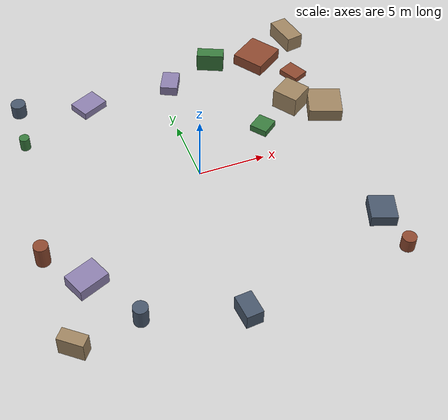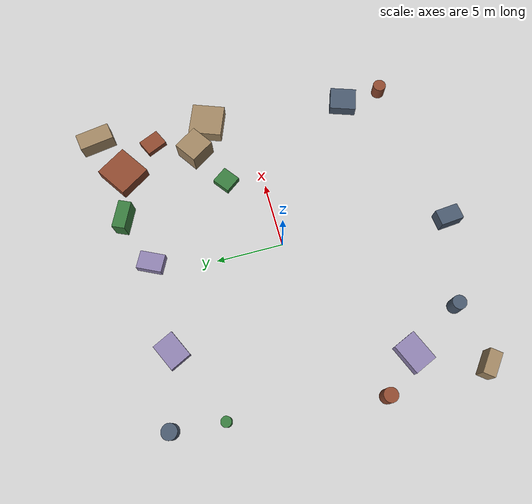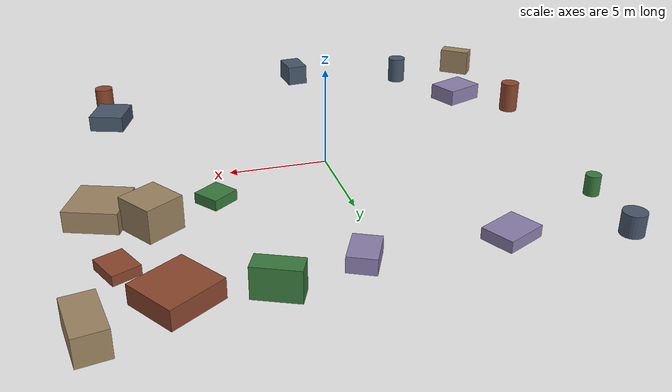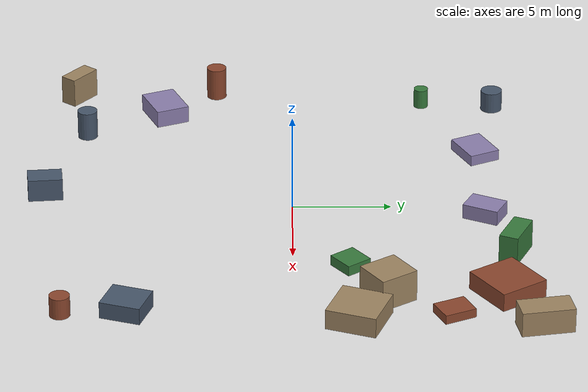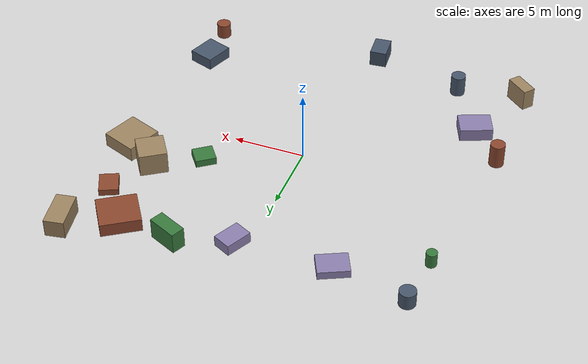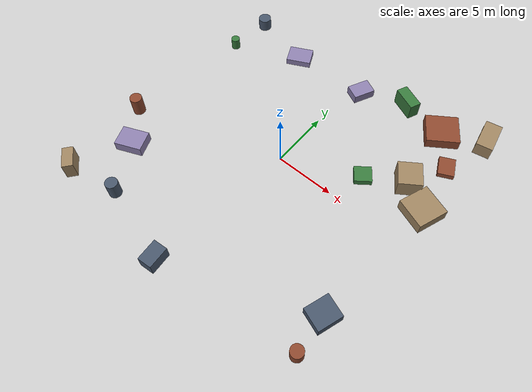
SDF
<sdf version="1.10">
 <world name="robotx_task1_uav_view">
  <gravity>0 0 -9.81</gravity>
  <physics name="physics" type="ode">
   <max_step_size>0.002</max_step_size>
   <real_time_factor>1.0</real_time_factor>
  </physics>
  <scene>
   <ambient>0.18 0.22 0.18 1.0</ambient>
   <background>0.35 0.55 0.40 1.0</background>
   <shadows>true</shadows>
   <grid>false</grid>
  </scene>
  <light name="sun" type="directional">
   <pose>0 0 300 0 0 0</pose>
   <diffuse>0.55 0.75 0.60 1.0</diffuse>
   <specular>0.28 0.45 0.32 1.0</specular>
   <direction>0.20 -0.06 -1.0</direction>
   <attenuation>
    <range>2500</range>
    <constant>0.85</constant>
    <linear>0.001</linear>
    <quadratic>0.00005</quadratic>
   </attenuation>
  </light>
  <plugin filename="gz-sim-physics-system" name="gz::sim::systems::Physics"/>
  <plugin filename="gz-sim-user-commands-system" name="gz::sim::systems::UserCommands"/>
  <plugin filename="gz-sim-scene-broadcaster-system" name="gz::sim::systems::SceneBroadcaster"/>
  <plugin filename="gz-sim-sensors-system" name="gz::sim::systems::Sensors">
   <render_engine>ogre2</render_engine>
  </plugin>
  <model name="scene_clutter_box_000">
   <static>true</static>
   <pose>9.176 4.565 0.826 0 0 -2.545799</pose>
   <link name="link">
    <visual name="v">
     <geometry><box><size>1.920 2.005 1.612</size></box></geometry>
     <material><ambient>0.45 0.38 0.32 1.0</ambient><diffuse>0.62 0.52 0.38 1.0</diffuse></material>
    </visual>
   </link>
  </model>
  <model name="scene_clutter_box_001">
   <static>true</static>
   <pose>10.503 -7.996 0.447 0 0 1.241051</pose>
   <link name="link">
    <visual name="v">
     <geometry><box><size>2.054 1.861 0.854</size></box></geometry>
     <material><ambient>0.18 0.22 0.28 1.0</ambient><diffuse>0.28 0.34 0.42 1.0</diffuse></material>
    </visual>
   </link>
  </model>
  <model name="scene_clutter_box_002">
   <static>true</static>
   <pose>8.723 10.349 0.484 0 0 -2.548389</pose>
   <link name="link">
    <visual name="v">
     <geometry><box><size>2.728 2.576 0.928</size></box></geometry>
     <material><ambient>0.35 0.16 0.12 1.0</ambient><diffuse>0.55 0.28 0.18 1.0</diffuse></material>
    </visual>
   </link>
  </model>
  <model name="scene_clutter_box_003">
   <static>true</static>
   <pose>6.122 2.817 0.285 0 0 2.219840</pose>
   <link name="link">
    <visual name="v">
     <geometry><box><size>1.360 1.427 0.529</size></box></geometry>
     <material><ambient>0.12 0.30 0.14 1.0</ambient><diffuse>0.22 0.48 0.24 1.0</diffuse></material>
    </visual>
   </link>
  </model>
  <model name="scene_clutter_box_004">
   <static>true</static>
   <pose>1.032 9.672 0.403 0 0 1.119745</pose>
   <link name="link">
    <visual name="v">
     <geometry><box><size>1.868 1.327 0.765</size></box></geometry>
     <material><ambient>0.40 0.35 0.50 1.0</ambient><diffuse>0.55 0.50 0.68 1.0</diffuse></material>
    </visual>
   </link>
  </model>
  <model name="scene_clutter_box_005">
   <static>true</static>
   <pose>11.383 3.112 0.532 0 0 -1.928081</pose>
   <link name="link">
    <visual name="v">
     <geometry><box><size>2.545 2.533 1.025</size></box></geometry>
     <material><ambient>0.45 0.38 0.32 1.0</ambient><diffuse>0.62 0.52 0.38 1.0</diffuse></material>
    </visual>
   </link>
  </model>
  <model name="scene_clutter_cyl_006">
   <static>true</static>
   <pose>-10.894 10.667 0.594 0 0 2.585105</pose>
   <link name="link">
    <visual name="v">
     <geometry><cylinder><radius>0.557</radius><length>1.087</length></cylinder></geometry>
     <material><ambient>0.18 0.22 0.28 1.0</ambient><diffuse>0.28 0.34 0.42 1.0</diffuse></material>
    </visual>
   </link>
  </model>
  <model name="scene_clutter_cyl_007">
   <static>true</static>
   <pose>-12.495 -3.970 0.891 0 0 -0.564102</pose>
   <link name="link">
    <visual name="v">
     <geometry><cylinder><radius>0.510</radius><length>1.682</length></cylinder></geometry>
     <material><ambient>0.35 0.16 0.12 1.0</ambient><diffuse>0.55 0.28 0.18 1.0</diffuse></material>
    </visual>
   </link>
  </model>
  <model name="scene_clutter_box_008">
   <static>true</static>
   <pose>4.926 10.963 0.758 0 0 1.151665</pose>
   <link name="link">
    <visual name="v">
     <geometry><box><size>0.966 2.106 1.475</size></box></geometry>
     <material><ambient>0.12 0.30 0.14 1.0</ambient><diffuse>0.22 0.48 0.24 1.0</diffuse></material>
    </visual>
   </link>
  </model>
  <model name="scene_clutter_box_009">
   <static>true</static>
   <pose>-10.220 -6.671 0.466 0 0 1.967517</pose>
   <link name="link">
    <visual name="v">
     <geometry><box><size>1.750 2.280 0.892</size></box></geometry>
     <material><ambient>0.40 0.35 0.50 1.0</ambient><diffuse>0.55 0.50 0.68 1.0</diffuse></material>
    </visual>
   </link>
  </model>
  <model name="scene_clutter_box_010">
   <static>true</static>
   <pose>-12.289 -11.315 0.778 0 0 -0.678255</pose>
   <link name="link">
    <visual name="v">
     <geometry><box><size>1.796 0.881 1.517</size></box></geometry>
     <material><ambient>0.45 0.38 0.32 1.0</ambient><diffuse>0.62 0.52 0.38 1.0</diffuse></material>
    </visual>
   </link>
  </model>
  <model name="scene_clutter_cyl_011">
   <static>true</static>
   <pose>-7.818 -10.672 0.800 0 0 -1.887495</pose>
   <link name="link">
    <visual name="v">
     <geometry><cylinder><radius>0.512</radius><length>1.500</length></cylinder></geometry>
     <material><ambient>0.18 0.22 0.28 1.0</ambient><diffuse>0.28 0.34 0.42 1.0</diffuse></material>
    </visual>
   </link>
  </model>
  <model name="scene_clutter_cyl_012">
   <static>true</static>
   <pose>10.785 -11.158 0.587 0 0 2.311826</pose>
   <link name="link">
    <visual name="v">
     <geometry><cylinder><radius>0.506</radius><length>1.074</length></cylinder></geometry>
     <material><ambient>0.35 0.16 0.12 1.0</ambient><diffuse>0.55 0.28 0.18 1.0</diffuse></material>
    </visual>
   </link>
  </model>
  <model name="scene_clutter_cyl_013">
   <static>true</static>
   <pose>-11.253 6.933 0.560 0 0 2.761121</pose>
   <link name="link">
    <visual name="v">
     <geometry><cylinder><radius>0.373</radius><length>1.021</length></cylinder></geometry>
     <material><ambient>0.12 0.30 0.14 1.0</ambient><diffuse>0.22 0.48 0.24 1.0</diffuse></material>
    </visual>
   </link>
  </model>
  <model name="scene_clutter_box_014">
   <static>true</static>
   <pose>-5.675 9.536 0.301 0 0 2.026558</pose>
   <link name="link">
    <visual name="v">
     <geometry><box><size>1.639 2.120 0.562</size></box></geometry>
     <material><ambient>0.40 0.35 0.50 1.0</ambient><diffuse>0.55 0.50 0.68 1.0</diffuse></material>
    </visual>
   </link>
  </model>
  <model name="scene_clutter_box_015">
   <static>true</static>
   <pose>12.056 11.935 0.646 0 0 0.173841</pose>
   <link name="link">
    <visual name="v">
     <geometry><box><size>1.363 2.601 1.251</size></box></geometry>
     <material><ambient>0.45 0.38 0.32 1.0</ambient><diffuse>0.62 0.52 0.38 1.0</diffuse></material>
    </visual>
   </link>
  </model>
  <model name="scene_clutter_box_016">
   <static>true</static>
   <pose>-1.316 -12.542 0.602 0 0 1.660919</pose>
   <link name="link">
    <visual name="v">
     <geometry><box><size>1.756 1.192 1.164</size></box></geometry>
     <material><ambient>0.18 0.22 0.28 1.0</ambient><diffuse>0.28 0.34 0.42 1.0</diffuse></material>
    </visual>
   </link>
  </model>
  <model name="scene_clutter_box_017">
   <static>true</static>
   <pose>10.826 7.693 0.254 0 0 0.439509</pose>
   <link name="link">
    <visual name="v">
     <geometry><box><size>1.312 1.638 0.468</size></box></geometry>
     <material><ambient>0.35 0.16 0.12 1.0</ambient><diffuse>0.55 0.28 0.18 1.0</diffuse></material>
    </visual>
   </link>
  </model>
  <model name="uav_dataset_camera">
   <static>false</static>
   <pose>0 0 26 0 0 0</pose>
   <plugin filename="librobotx_overhead_motion_plugin.dylib" name="robotx::OverheadMotionPlugin">
    <radius_x_m>12.59662</radius_x_m>
    <radius_y_m>10.56166</radius_y_m>
    <angular_speed_rad_s>0.058568</angular_speed_rad_s>
    <phase_rad>5.959574</phase_rad>
    <z_wobble_m>0.02978</z_wobble_m>
    <z_wobble_hz>0.03557</z_wobble_hz>
    <z_wobble_phase_rad>2.754847</z_wobble_phase_rad>
   </plugin>
   <link name="camera_link">
    <gravity>false</gravity>
    <sensor name="top_down_rgb" type="camera">
     <always_on>true</always_on>
     <update_rate>20</update_rate>
     <pose>0 0 0 0 1.57079632679 0</pose>
     <camera>
      <horizontal_fov>1.05</horizontal_fov>
      <image><width>1920</width><height>1080</height><format>R8G8B8</format></image>
      <clip><near>0.2</near><far>600</far></clip>
     </camera>
     <topic>/robotx/uav/camera/image_raw</topic>
     <visualize>true</visualize>
    </sensor>
   </link>
  </model>
 </world>
</sdf>
